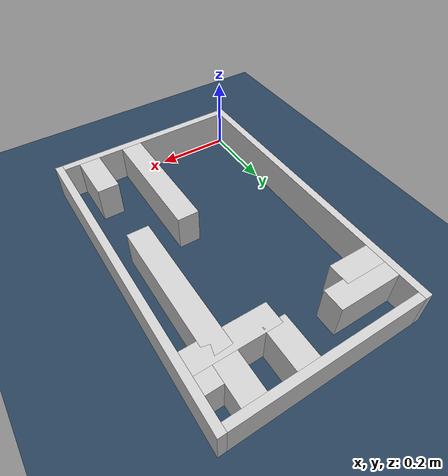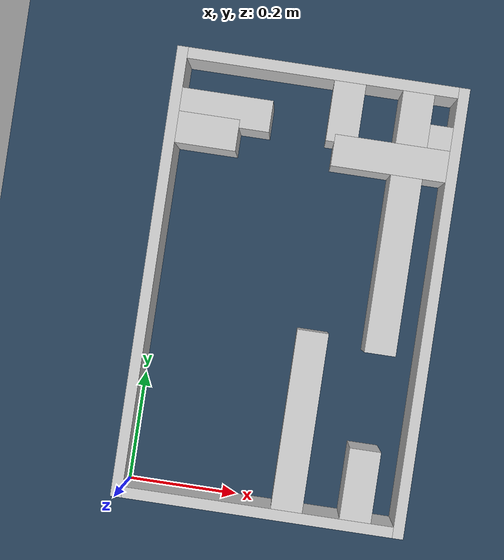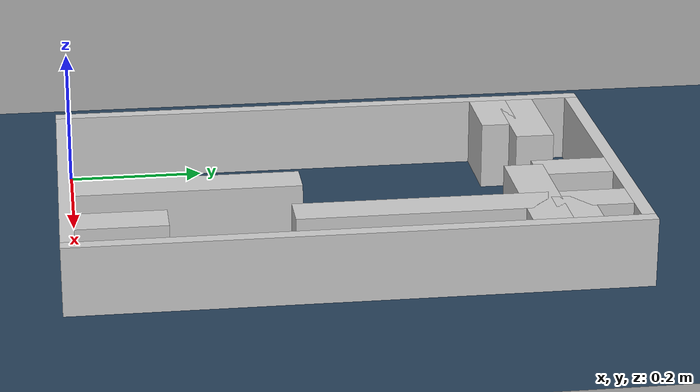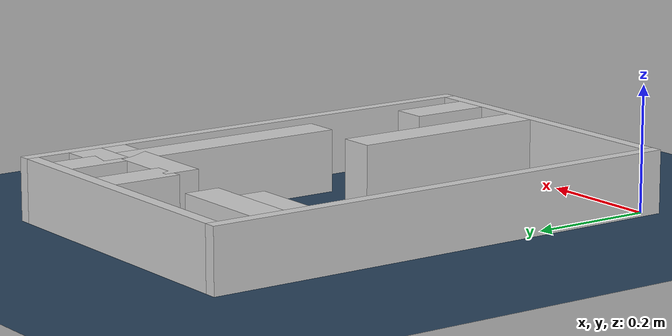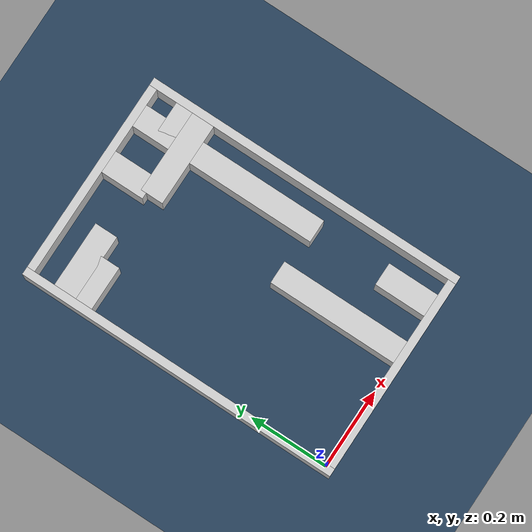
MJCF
<?xml version="1.0" ?>
<mujoco model="generated_real_template">
  <compiler angle="degree"/>
  <option timestep="0.002" integrator="implicitfast" iterations="100" cone="elliptic"/>
  <default>
    <geom density="1"/>
  </default>
  <asset>
    <texture builtin="gradient" height="3072" rgb1="0.3 0.5 0.7" rgb2="0 0 0" type="skybox" width="512"/>
    <texture builtin="checker" height="300" mark="edge" markrgb="0.8 0.8 0.8" name="groundplane" rgb1="0.2 0.3 0.4" rgb2="0.1 0.2 0.3" type="2d" width="300"/>
    <material name="groundplane" reflectance="0.2" texrepeat="5 5" texture="groundplane" texuniform="true"/>
  </asset>
  <worldbody>
    <light dir="0 0 -1" directional="true" pos="0 0 1.5"/>
    <geom name="floor" type="plane" condim="4" friction="0.5 0.005 0.001" material="groundplane" size="0 0 0.05"/>
    <body name="walls">
      <geom name="wall_boundary_left" type="box" condim="4" friction="1.0 0.005 0.0001" rgba="0.8 0.8 0.8 1" pos="-0.010000 0.387500 0.050000" euler="0 0 0.000000" size="0.010000 0.407500 0.050000"/>
      <geom name="wall_boundary_right" type="box" condim="4" friction="1.0 0.005 0.0001" rgba="0.8 0.8 0.8 1" pos="0.500000 0.387500 0.050000" euler="0 0 0.000000" size="0.010000 0.407500 0.050000"/>
      <geom name="wall_boundary_bottom" type="box" condim="4" friction="1.0 0.005 0.0001" rgba="0.8 0.8 0.8 1" pos="0.245000 -0.010000 0.050000" euler="0 0 0.000000" size="0.245000 0.010000 0.050000"/>
      <geom name="wall_boundary_top" type="box" condim="4" friction="1.0 0.005 0.0001" rgba="0.8 0.8 0.8 1" pos="0.245000 0.785000 0.050000" euler="0 0 0.000000" size="0.245000 0.010000 0.050000"/>
      <geom name="wall_inner_1_1" type="box" condim="4" friction="1.0 0.005 0.0001" rgba="0.8 0.8 0.8 1" pos="0.055049 0.651300 0.050000" euler="0 0 0.000000" size="0.055049 0.028500 0.050000"/>
      <geom name="wall_inner_1_2" type="box" condim="4" friction="1.0 0.005 0.0001" rgba="0.8 0.8 0.8 1" pos="0.386348 0.651300 0.050000" euler="0 0 0.000000" size="0.103652 0.028500 0.050000"/>
      <geom name="wall_inner_2_1" type="box" condim="4" friction="1.0 0.005 0.0001" rgba="0.8 0.8 0.8 1" pos="0.295779 0.162407 0.050000" euler="0 0 90.000000" size="0.162407 0.028500 0.050000"/>
      <geom name="wall_inner_2_2" type="box" condim="4" friction="1.0 0.005 0.0001" rgba="0.8 0.8 0.8 1" pos="0.295779 0.720423 0.050000" euler="0 0 90.000000" size="0.054577 0.028500 0.050000"/>
      <geom name="wall_inner_3_1" type="box" condim="4" friction="1.0 0.005 0.0001" rgba="0.8 0.8 0.8 1" pos="0.420018 0.064319 0.050000" euler="0 0 90.000000" size="0.064319 0.028500 0.050000"/>
      <geom name="wall_inner_3_2" type="box" condim="4" friction="1.0 0.005 0.0001" rgba="0.8 0.8 0.8 1" pos="0.420018 0.538271 0.050000" euler="0 0 90.000000" size="0.236729 0.028500 0.050000"/>
      <geom name="wall_inner_4_1" type="box" condim="4" friction="1.0 0.005 0.0001" rgba="0.8 0.8 0.8 1" pos="0.082325 0.693694 0.050000" euler="0 0 0.000000" size="0.082325 0.028500 0.050000"/>
      <geom name="wall_inner_4_2" type="box" condim="4" friction="1.0 0.005 0.0001" rgba="0.8 0.8 0.8 1" pos="0.450307 0.693694 0.050000" euler="0 0 0.000000" size="0.039693 0.028500 0.050000"/>
    </body>
  </worldbody>
</mujoco>
